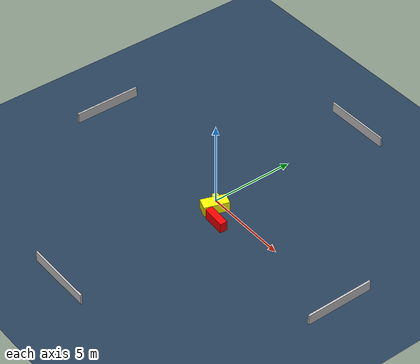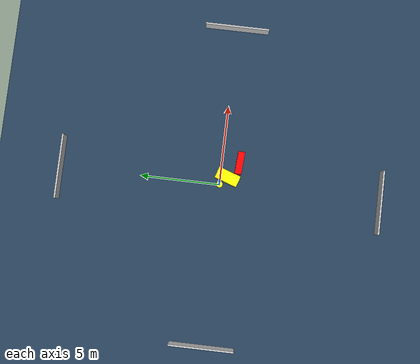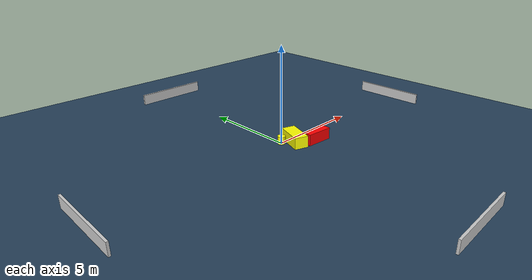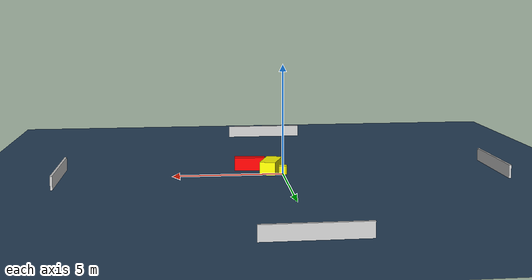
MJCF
<?xml version="1.0" ?>
<mujoco model="generated_environment">
  <option timestep="0.01" integrator="RK4" cone="elliptic"/>
  <default>
    <geom density="1"/>
  </default>
  <asset>
    <texture builtin="gradient" height="3072" name="skybox" rgb1="0.3 0.5 0.7" rgb2="0 0 0" type="skybox" width="512"/>
    <texture builtin="checker" height="300" name="groundplane" rgb1="0.2 0.3 0.4" rgb2="0.1 0.2 0.3" type="2d" width="300"/>
    <material name="groundplane" reflectance="0.2" texrepeat="5 5" texture="groundplane"/>
  </asset>
  <worldbody>
    <light dir="0 0 -1" directional="true" pos="0 0 1.5"/>
    <geom condim="3" friction="0.5 0.005 0.001" material="groundplane" name="floor" pos="0 0 0" size="0 0 0.05" type="plane"/>
    <body name="walls">
      <geom name="wall_1" condim="4" pos="-10.0 0.0 0.3" rgba="0.800000011920929 0.800000011920929 0.800000011920929 1.0" size="0.05 2.0 0.3" type="box"/>
      <geom name="wall_2" condim="4" pos="10.0 0.0 0.3" rgba="0.800000011920929 0.800000011920929 0.800000011920929 1.0" size="0.05 2.0 0.3" type="box"/>
      <geom name="wall_3" condim="4" pos="0.0 -10.0 0.3" rgba="0.800000011920929 0.800000011920929 0.800000011920929 1.0" size="2.0 0.05 0.3" type="box"/>
      <geom name="wall_4" condim="4" pos="0.0 10.0 0.3" rgba="0.800000011920929 0.800000011920929 0.800000011920929 1.0" size="2.0 0.05 0.3" type="box"/>
    </body>
    <body name="robot">
      <joint name="joint_x" type="slide" pos="0 0 0" axis="1 0 0"/>
      <joint name="joint_y" type="slide" pos="0 0 0" axis="0 1 0"/>
      <geom name="robot" type="cylinder" pos="0.0 0.0 0.2" size="0.2 0.2 0.0" mass="5.0" friction="1.0 0.005 0.0001" condim="4" rgba="1.0 1.0 0.0 1.0"/>
    </body>
    <body name="obstacle_1_movable">
      <geom name="obstacle_1_movable" condim="4" pos="0.4990188538749386 -0.4489676538451602 0.3" euler="0 0 70.79145950708028" friction="0.0 0.005 0.001" rgba="1.0 1.0 0.0 1.0" size="0.7245274968131312 0.3596379569390594 0.3" type="box" mass="0.1"/>
      <joint type="free"/>
    </body>
    <body name="obstacle_2_static">
      <geom name="obstacle_2_static" condim="4" pos="1.450463782832011 -1.0946179091615373 0.3" euler="0 0 86.01128155010859" friction="0.0 0.005 0.001" rgba="1.0 0.0 0.0 1.0" size="0.21125031870466782 0.7013969755494402 0.3" type="box"/>
    </body>
  </worldbody>
  <actuator>
    <motor name="actuator_x" joint="joint_x" gear="1" ctrlrange="-1 1"/>
    <motor name="actuator_y" joint="joint_y" gear="1" ctrlrange="-1 1"/>
  </actuator>
</mujoco>
